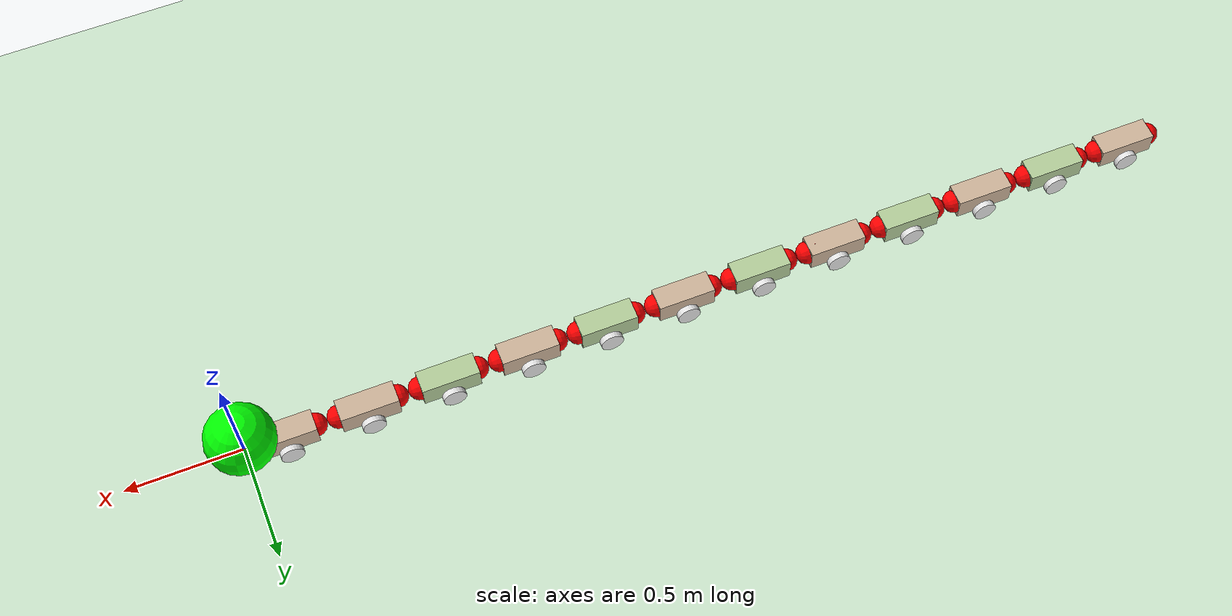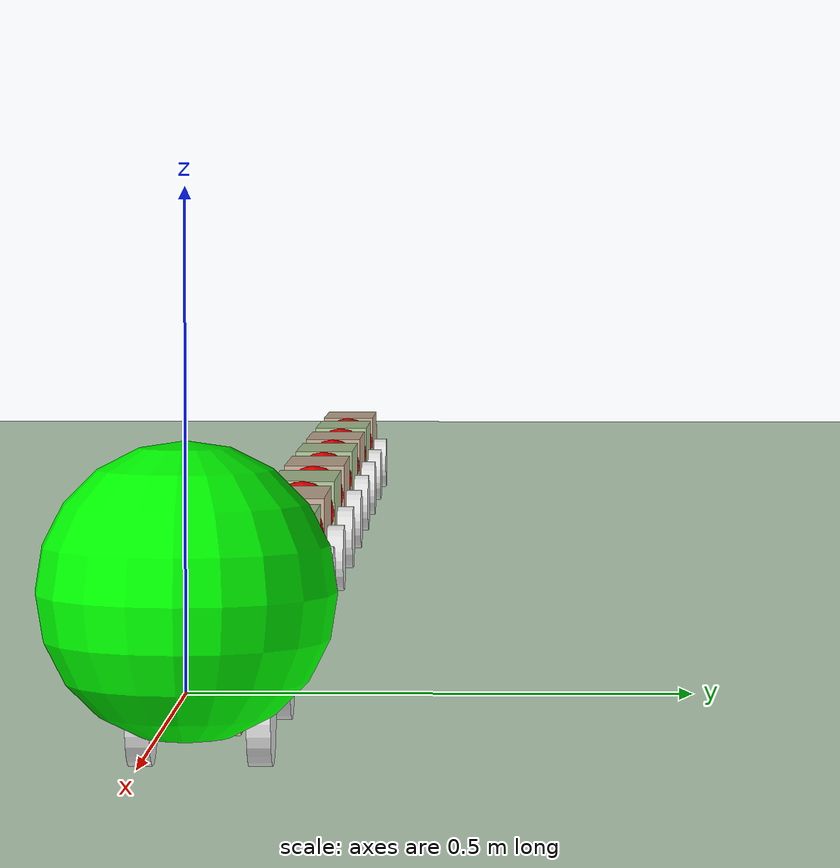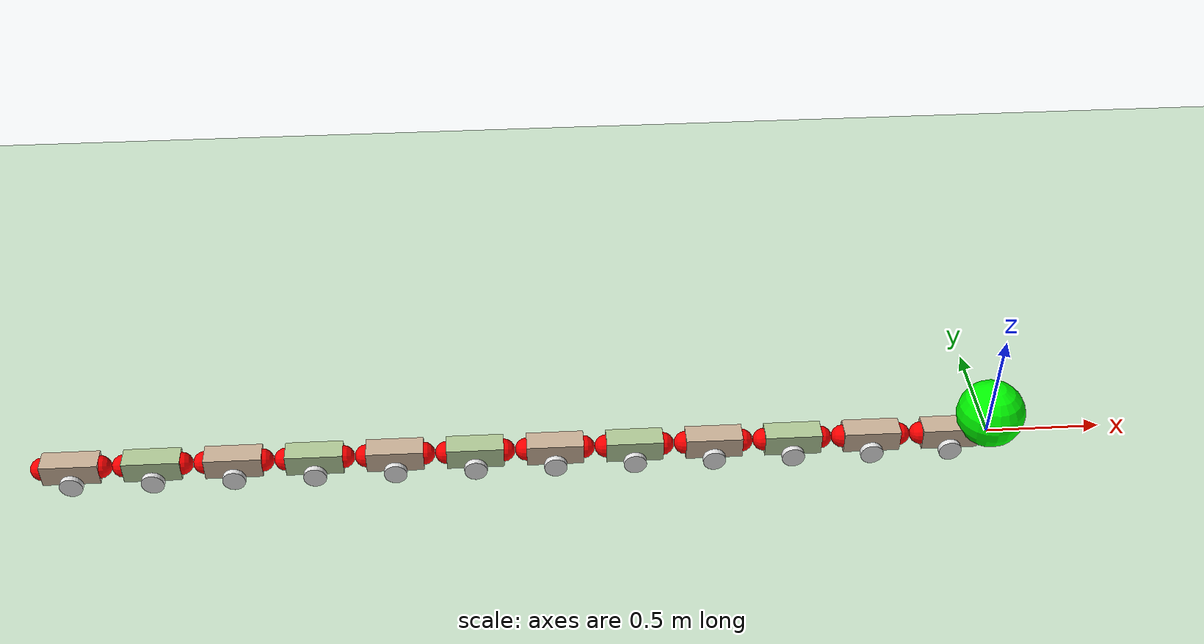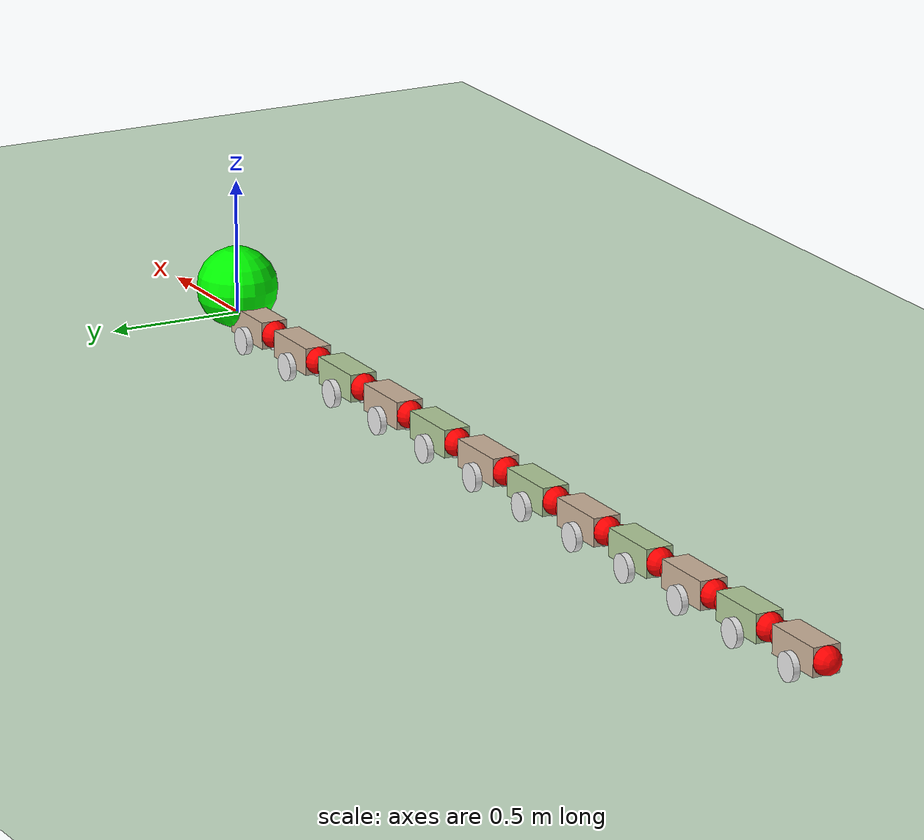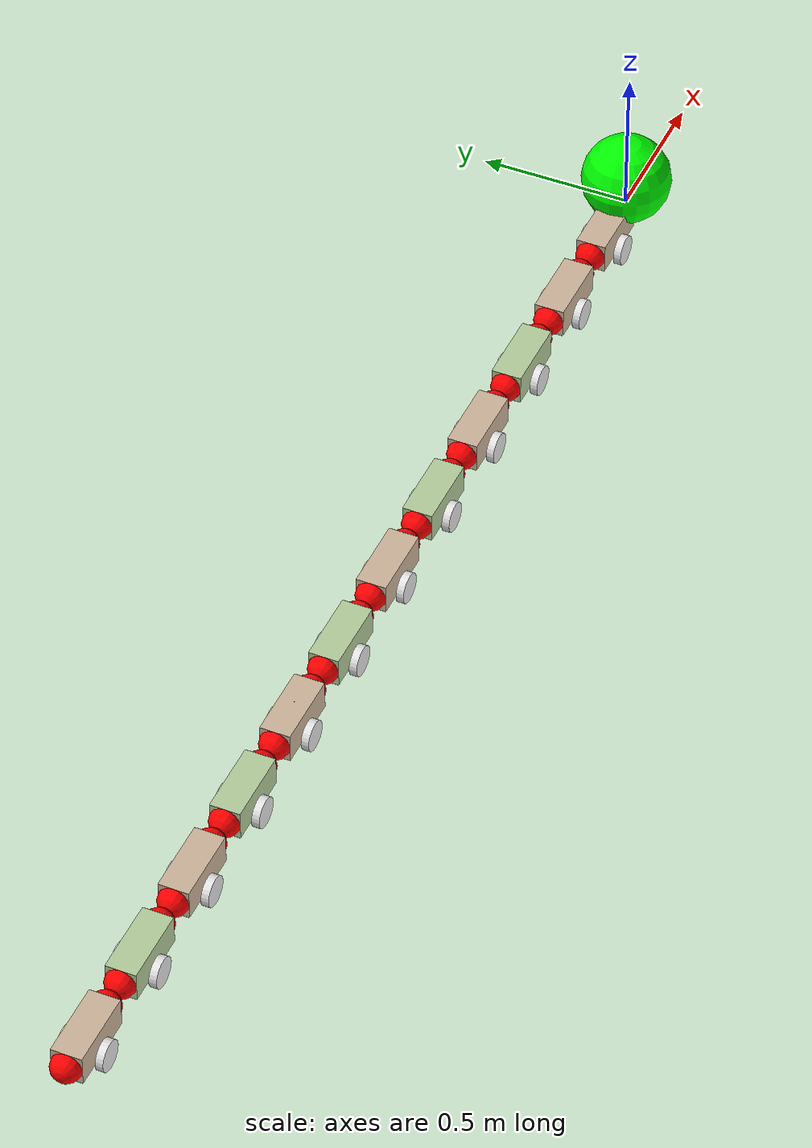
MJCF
<mujoco model="cobra_snake_navigation">
    <compiler angle="degree" coordinate="local" inertiafromgeom="true"/>

    <option integrator="Euler" timestep="0.001">
        <flag energy="enable" clampctrl="enable"/>
    </option>

    <size nconmax="2000"/>

    <default>
        <geom conaffinity="0" condim="3" friction="1 0.05 0.00001" margin="0.01" density="600"/>
        <joint armature="0.001" damping="0" frictionloss="0.001"/>

        <default class="wheel">
            <joint axis="0 1 0" type="hinge" damping="0.2"/>
            <geom type="cylinder" fromto="0 0 0  0 0.025 0" size="0.05" material="geom"
                  rgba=".9 .9 .9 1" friction="1.25 1.0 0.0001"/>
        </default>

        <!-- Yaw joints: rotate around z-axis -->
        <default class="yaw_joint">
            <geom material="geom" rgba="0.8 0.7 .6 1"/>
            <joint pos="0 0 0" axis="0 0 1" type="hinge" limited="true" range="-90 90"/>
        </default>

        <!-- Pitch joints: rotate around y-axis -->
        <default class="pitch_joint">
            <geom material="geom" rgba="0.7 0.8 .6 1"/>
            <joint pos="0 0 0" axis="0 1 0" type="hinge" limited="true" range="-45 45"/>
        </default>

        <position ctrllimited="true" ctrlrange="-1.5 1.5" forcelimited="true"
                  forcerange="-20.0 20.0" kp="20" gear="1"/>
    </default>

    <asset>
        <texture builtin="gradient" height="100" rgb1="1 1 1" rgb2="0 0 0" type="skybox" width="100"/>
        <texture builtin="flat" height="1278" mark="cross" markrgb="1 1 1" name="texgeom" random="0.01"
                 rgb1="0.8 0.6 0.4" rgb2="0.8 0.6 0.4" type="cube" width="127"/>
        <texture builtin="checker" height="100" name="texplane" rgb1="0 0 0" rgb2="0.8 0.8 0.8"
                 type="2d" width="100"/>
        <material name="MatPlane" reflectance="0.5" shininess="1" specular="1"
                  texrepeat="80 80" texture="texplane"/>
        <material name="geom" texture="texgeom" texuniform="true"/>
        <material name="MatTarget" rgba="0 1 0 1" reflectance="0.05" shininess="0.1" specular="0.1"/>
    </asset>

    <visual>
        <map znear="0.0625"/>
        <quality shadowsize="4096"/>
    </visual>

    <worldbody>
        <light cutoff="100" diffuse="1 1 1" dir="0 0 -1.3" directional="true" exponent="1"
               pos="0 0 1.3" specular=".1 .1 .1"/>
        <geom name="floor" size="80 80 10" material="MatPlane" conaffinity="1" condim="3"
              pos="0 0 -0.1" rgba="0.8 0.9 0.8 1" type="plane"/>

        <!-- Waypoint marker -->
        <body name="waypoint" pos="0 0 0.1">
            <joint axis="1 0 0" name="waypoint_slider_x" type="slide"/>
            <joint axis="0 1 0" name="waypoint_slider_y" type="slide"/>
            <geom name="waypoint_geom" type="sphere" pos="0 0 0" size="0.15"
                  material="MatTarget" conaffinity="0" contype="0"/>
        </body>

        <!-- COBRA snake robot: head + 11 alternating pitch/yaw joints + tail -->
        <body name="link0" pos="0 0 0.0">
            <!-- Free body DOFs -->
            <joint axis="1 0 0" name="slider_x" type="slide"/>
            <joint axis="0 1 0" name="slider_y" type="slide"/>
            <joint axis="0 0 1" name="slider_z" type="slide"/>
            <joint pos="0 0 0" axis="1 0 0" name="hinge_x" type="hinge"/>
            <joint pos="0 0 0" axis="0 1 0" name="hinge_y" type="hinge"/>
            <joint pos="0 0 0" axis="0 0 1" name="hinge_z" type="hinge"/>

            <!-- Head module -->
            <body pos="-0.175 0.05 -0.05" childclass="wheel"><joint name="wheel_l_00"/><geom/></body>
            <geom name="head" pos="-0.175 0 0" size="0.125 0.05 0.05" type="box" material="geom"
                  rgba="0.8 0.7 .6 1"/>
            <geom fromto="-0.30 0 0 -0.05 0 0" size="0.05" type="capsule" rgba="1.0 0.0 0.0 1"/>
            <body pos="-0.175 -0.075 -0.05" childclass="wheel"><joint name="wheel_r_00"/><geom/></body>

            <site name="site_head" pos="-0.175 0 0.0" type="box" size=".01 .01 .01"/>
            <camera name="head_cam" mode="fixed" pos="0 0 0.025" fovy="90" euler="90 -90 0"/>
            <camera name="track_snake" mode="trackcom" pos="0 -4 6" euler="30 0 0"/>
            <camera name="top_down" mode="trackcom" pos="0 0 8" euler="0 0 0"/>

            <!-- Joint 01: yaw (z-axis) — odd joint index=1, but first joint -->
            <body name="link1" pos="-0.35 0 0" childclass="yaw_joint">
                <joint name="joint01"/>
                <body pos="-0.175 0.05 -0.05" childclass="wheel"><joint name="wheel_l_01"/><geom/></body>
                <geom name="link1_geom" pos="-0.175 0 0" size="0.125 0.05 0.05" type="box"/>
                <geom fromto="-0.30 0 0 -0.05 0 0" size="0.05" type="capsule" rgba="1.0 0.0 0.0 1"/>
                <body pos="-0.175 -0.075 -0.05" childclass="wheel"><joint name="wheel_r_01"/><geom/></body>

                <!-- Joint 02: pitch (y-axis) -->
                <body name="link2" pos="-0.35 0 0" childclass="pitch_joint">
                    <joint name="joint02"/>
                    <body pos="-0.175 0.05 -0.05" childclass="wheel"><joint name="wheel_l_02"/><geom/></body>
                    <geom name="link2_geom" pos="-0.175 0 0" size="0.125 0.05 0.05" type="box"/>
                    <geom fromto="-0.30 0 0 -0.05 0 0" size="0.05" type="capsule" rgba="1.0 0.0 0.0 1"/>
                    <body pos="-0.175 -0.075 -0.05" childclass="wheel"><joint name="wheel_r_02"/><geom/></body>

                    <!-- Joint 03: yaw -->
                    <body name="link3" pos="-0.35 0 0" childclass="yaw_joint">
                        <joint name="joint03"/>
                        <body pos="-0.175 0.05 -0.05" childclass="wheel"><joint name="wheel_l_03"/><geom/></body>
                        <geom name="link3_geom" pos="-0.175 0 0" size="0.125 0.05 0.05" type="box"/>
                        <geom fromto="-0.30 0 0 -0.05 0 0" size="0.05" type="capsule" rgba="1.0 0.0 0.0 1"/>
                        <body pos="-0.175 -0.075 -0.05" childclass="wheel"><joint name="wheel_r_03"/><geom/></body>

                        <!-- Joint 04: pitch -->
                        <body name="link4" pos="-0.35 0 0" childclass="pitch_joint">
                            <joint name="joint04"/>
                            <body pos="-0.175 0.05 -0.05" childclass="wheel"><joint name="wheel_l_04"/><geom/></body>
                            <geom name="link4_geom" pos="-0.175 0 0" size="0.125 0.05 0.05" type="box"/>
                            <geom fromto="-0.30 0 0 -0.05 0 0" size="0.05" type="capsule" rgba="1.0 0.0 0.0 1"/>
                            <body pos="-0.175 -0.075 -0.05" childclass="wheel"><joint name="wheel_r_04"/><geom/></body>

                            <!-- Joint 05: yaw -->
                            <body name="link5" pos="-0.35 0 0" childclass="yaw_joint">
                                <joint name="joint05"/>
                                <body pos="-0.175 0.05 -0.05" childclass="wheel"><joint name="wheel_l_05"/><geom/></body>
                                <geom name="link5_geom" pos="-0.175 0 0" size="0.125 0.05 0.05" type="box"/>
                                <geom fromto="-0.30 0 0 -0.05 0 0" size="0.05" type="capsule" rgba="1.0 0.0 0.0 1"/>
                                <body pos="-0.175 -0.075 -0.05" childclass="wheel"><joint name="wheel_r_05"/><geom/></body>

                                <!-- Joint 06: pitch -->
                                <body name="link6" pos="-0.35 0 0" childclass="pitch_joint">
                                    <joint name="joint06"/>
                                    <body pos="-0.175 0.05 -0.05" childclass="wheel"><joint name="wheel_l_06"/><geom/></body>
                                    <geom name="link6_geom" pos="-0.175 0 0" size="0.125 0.05 0.05" type="box"/>
                                    <geom fromto="-0.30 0 0 -0.05 0 0" size="0.05" type="capsule" rgba="1.0 0.0 0.0 1"/>
                                    <body pos="-0.175 -0.075 -0.05" childclass="wheel"><joint name="wheel_r_06"/><geom/></body>

                                    <!-- Joint 07: yaw -->
                                    <body name="link7" pos="-0.35 0 0" childclass="yaw_joint">
                                        <joint name="joint07"/>
                                        <body pos="-0.175 0.05 -0.05" childclass="wheel"><joint name="wheel_l_07"/><geom/></body>
                                        <geom name="link7_geom" pos="-0.175 0 0" size="0.125 0.05 0.05" type="box"/>
                                        <geom fromto="-0.30 0 0 -0.05 0 0" size="0.05" type="capsule" rgba="1.0 0.0 0.0 1"/>
                                        <body pos="-0.175 -0.075 -0.05" childclass="wheel"><joint name="wheel_r_07"/><geom/></body>

                                        <!-- Joint 08: pitch -->
                                        <body name="link8" pos="-0.35 0 0" childclass="pitch_joint">
                                            <joint name="joint08"/>
                                            <body pos="-0.175 0.05 -0.05" childclass="wheel"><joint name="wheel_l_08"/><geom/></body>
                                            <geom name="link8_geom" pos="-0.175 0 0" size="0.125 0.05 0.05" type="box"/>
                                            <geom fromto="-0.30 0 0 -0.05 0 0" size="0.05" type="capsule" rgba="1.0 0.0 0.0 1"/>
                                            <body pos="-0.175 -0.075 -0.05" childclass="wheel"><joint name="wheel_r_08"/><geom/></body>

                                            <!-- Joint 09: yaw -->
                                            <body name="link9" pos="-0.35 0 0" childclass="yaw_joint">
                                                <joint name="joint09"/>
                                                <body pos="-0.175 0.05 -0.05" childclass="wheel"><joint name="wheel_l_09"/><geom/></body>
                                                <geom name="link9_geom" pos="-0.175 0 0" size="0.125 0.05 0.05" type="box"/>
                                                <geom fromto="-0.30 0 0 -0.05 0 0" size="0.05" type="capsule" rgba="1.0 0.0 0.0 1"/>
                                                <body pos="-0.175 -0.075 -0.05" childclass="wheel"><joint name="wheel_r_09"/><geom/></body>

                                                <!-- Joint 10: pitch -->
                                                <body name="link10" pos="-0.35 0 0" childclass="pitch_joint">
                                                    <joint name="joint10"/>
                                                    <body pos="-0.175 0.05 -0.05" childclass="wheel"><joint name="wheel_l_10"/><geom/></body>
                                                    <geom name="link10_geom" pos="-0.175 0 0" size="0.125 0.05 0.05" type="box"/>
                                                    <geom fromto="-0.30 0 0 -0.05 0 0" size="0.05" type="capsule" rgba="1.0 0.0 0.0 1"/>
                                                    <body pos="-0.175 -0.075 -0.05" childclass="wheel"><joint name="wheel_r_10"/><geom/></body>

                                                    <!-- Joint 11: yaw (tail) -->
                                                    <body name="link11" pos="-0.35 0 0" childclass="yaw_joint">
                                                        <joint name="joint11"/>
                                                        <body pos="-0.175 0.05 -0.05" childclass="wheel"><joint name="wheel_l_11"/><geom/></body>
                                                        <geom name="link11_geom" pos="-0.175 0 0" size="0.125 0.05 0.05" type="box"/>
                                                        <geom fromto="-0.30 0 0 -0.05 0 0" size="0.05" type="capsule" rgba="1.0 0.0 0.0 1"/>
                                                        <body pos="-0.175 -0.075 -0.05" childclass="wheel"><joint name="wheel_r_11"/><geom/></body>
                                                    </body>
                                                </body>
                                            </body>
                                        </body>
                                    </body>
                                </body>
                            </body>
                        </body>
                    </body>
                </body>
            </body>
        </body>
    </worldbody>

    <actuator>
        <position name="actuator_joint01" joint="joint01"/>
        <position name="actuator_joint02" joint="joint02"/>
        <position name="actuator_joint03" joint="joint03"/>
        <position name="actuator_joint04" joint="joint04"/>
        <position name="actuator_joint05" joint="joint05"/>
        <position name="actuator_joint06" joint="joint06"/>
        <position name="actuator_joint07" joint="joint07"/>
        <position name="actuator_joint08" joint="joint08"/>
        <position name="actuator_joint09" joint="joint09"/>
        <position name="actuator_joint10" joint="joint10"/>
        <position name="actuator_joint11" joint="joint11"/>
    </actuator>

    <sensor>
        <!-- Joint position sensors -->
        <jointpos name="sensor_jointpos_joint01" joint="joint01"/>
        <jointpos name="sensor_jointpos_joint02" joint="joint02"/>
        <jointpos name="sensor_jointpos_joint03" joint="joint03"/>
        <jointpos name="sensor_jointpos_joint04" joint="joint04"/>
        <jointpos name="sensor_jointpos_joint05" joint="joint05"/>
        <jointpos name="sensor_jointpos_joint06" joint="joint06"/>
        <jointpos name="sensor_jointpos_joint07" joint="joint07"/>
        <jointpos name="sensor_jointpos_joint08" joint="joint08"/>
        <jointpos name="sensor_jointpos_joint09" joint="joint09"/>
        <jointpos name="sensor_jointpos_joint10" joint="joint10"/>
        <jointpos name="sensor_jointpos_joint11" joint="joint11"/>

        <!-- IMU on head -->
        <gyro name="sensor_gyro" site="site_head"/>
        <accelerometer name="sensor_accelerometer" site="site_head"/>

        <!-- Actuator force sensors -->
        <actuatorfrc name="sensor_actuatorfrc_joint01" actuator="actuator_joint01"/>
        <actuatorfrc name="sensor_actuatorfrc_joint02" actuator="actuator_joint02"/>
        <actuatorfrc name="sensor_actuatorfrc_joint03" actuator="actuator_joint03"/>
        <actuatorfrc name="sensor_actuatorfrc_joint04" actuator="actuator_joint04"/>
        <actuatorfrc name="sensor_actuatorfrc_joint05" actuator="actuator_joint05"/>
        <actuatorfrc name="sensor_actuatorfrc_joint06" actuator="actuator_joint06"/>
        <actuatorfrc name="sensor_actuatorfrc_joint07" actuator="actuator_joint07"/>
        <actuatorfrc name="sensor_actuatorfrc_joint08" actuator="actuator_joint08"/>
        <actuatorfrc name="sensor_actuatorfrc_joint09" actuator="actuator_joint09"/>
        <actuatorfrc name="sensor_actuatorfrc_joint10" actuator="actuator_joint10"/>
        <actuatorfrc name="sensor_actuatorfrc_joint11" actuator="actuator_joint11"/>
    </sensor>
</mujoco>
